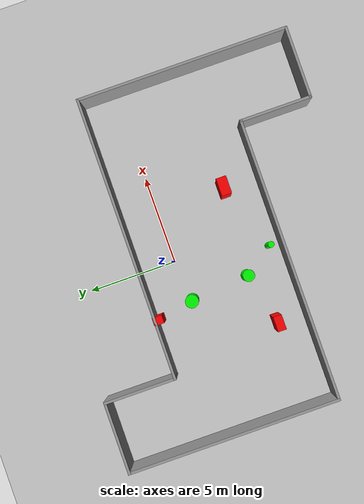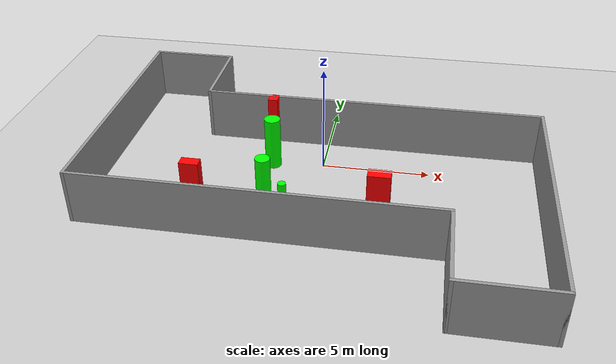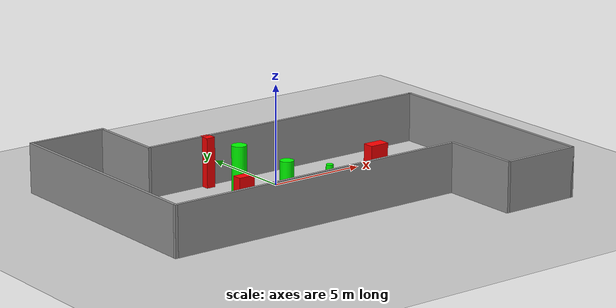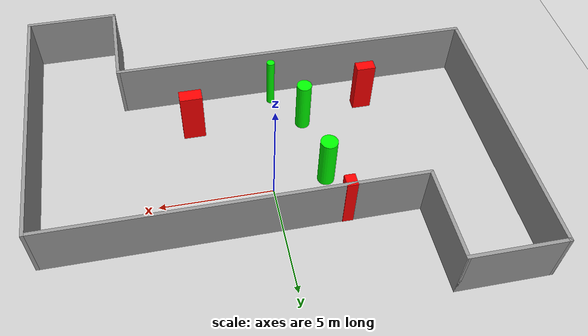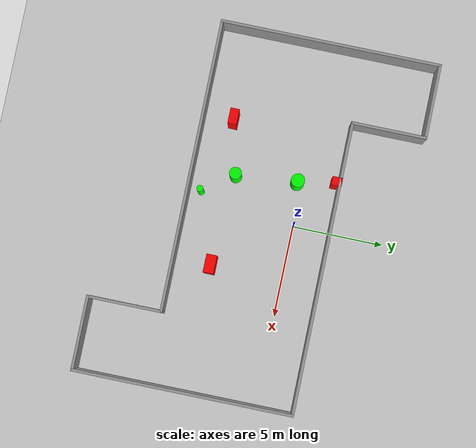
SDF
<sdf version="1.7">
 <world name="default">
  <light name="sun" type="directional">
   <pose>0 0 10 0 -0 0</pose>
   <diffuse>0.8 0.8 0.8 1</diffuse>
   <specular>0.2 0.2 0.2 1</specular>
   <attenuation>
    <range>1000</range>
    <constant>0.9</constant>
    <linear>0.01</linear>
    <quadratic>0.001</quadratic>
   </attenuation>
   <direction>-0.5 0.1 -0.9</direction>
   <spot><inner_angle>0</inner_angle><outer_angle>0</outer_angle><falloff>0</falloff></spot>
  </light>
  <model name="ground_plane">
   <static>1</static>
   <link name="link">
    <collision name="collision">
     <geometry><plane><normal>0 0 1</normal><size>100 100</size></plane></geometry>
     <surface>
      <contact><collide_bitmask>65535</collide_bitmask></contact>
      <friction><ode><mu>100</mu><mu2>50</mu2></ode></friction>
     </surface>
    </collision>
    <visual name="visual">
     <cast_shadows>0</cast_shadows>
     <geometry><plane><normal>0 0 1</normal><size>100 100</size></plane></geometry>
     <material>
      <script><uri>file://media/materials/scripts/gazebo.material</uri><name>Gazebo/Grey</name></script>
     </material>
    </visual>
   </link>
  </model>
  <gravity>0 0 -9.8</gravity>
  <magnetic_field>6e-06 2.3e-05 -4.2e-05</magnetic_field>
  <atmosphere type="adiabatic"/>
  <physics type="ode">
   <max_step_size>0.001</max_step_size>
   <real_time_factor>1</real_time_factor>
   <real_time_update_rate>1000</real_time_update_rate>
  </physics>
  <scene><ambient>0.4 0.4 0.4 1</ambient><background>0.7 0.7 0.7 1</background><shadows>1</shadows></scene>
  <spherical_coordinates>
   <surface_model>EARTH_WGS84</surface_model>
   <latitude_deg>0</latitude_deg>
   <longitude_deg>0</longitude_deg>
   <elevation>0</elevation>
   <heading_deg>0</heading_deg>
  </spherical_coordinates>
  <model name="my_base_walls">
   <link name="Wall_13">
    <collision name="Wall_13_Collision">
     <geometry><box><size>12.15 0.15 2.5</size></box></geometry>
     <pose>0 0 1.25 0 -0 0</pose>
    </collision>
    <visual name="Wall_13_Visual">
     <pose>0 0 1.25 0 -0 0</pose>
     <geometry><box><size>12.15 0.15 2.5</size></box></geometry>
     <material>
      <script><uri>file://media/materials/scripts/gazebo.material</uri><name>Gazebo/Grey</name></script>
      <ambient>1 1 1 1</ambient>
     </material>
     <meta><layer>0</layer></meta>
    </visual>
    <pose>10 -2 0 0 -0 1.5708</pose>
   </link>
   <link name="Wall_15">
    <collision name="Wall_15_Collision">
     <geometry><box><size>16.15 0.15 2.5</size></box></geometry>
     <pose>0 0 1.25 0 -0 0</pose>
    </collision>
    <visual name="Wall_15_Visual">
     <pose>0 0 1.25 0 -0 0</pose>
     <geometry><box><size>16.15 0.15 2.5</size></box></geometry>
     <material>
      <script><uri>file://media/materials/scripts/gazebo.material</uri><name>Gazebo/Grey</name></script>
      <ambient>1 1 1 1</ambient>
     </material>
     <meta><layer>0</layer></meta>
    </visual>
    <pose>2 4 0 0 -0 3.14159</pose>
   </link>
   <link name="Wall_17">
    <collision name="Wall_17_Collision">
     <geometry><box><size>4.15 0.15 2.5</size></box></geometry>
     <pose>0 0 1.25 0 -0 0</pose>
    </collision>
    <visual name="Wall_17_Visual">
     <pose>0 0 1.25 0 -0 0</pose>
     <geometry><box><size>4.15 0.15 2.5</size></box></geometry>
     <material>
      <script><uri>file://media/materials/scripts/gazebo.material</uri><name>Gazebo/Grey</name></script>
      <ambient>1 1 1 1</ambient>
     </material>
     <meta><layer>0</layer></meta>
    </visual>
    <pose>6 -6 0 0 -0 -1.5708</pose>
   </link>
   <link name="Wall_19">
    <collision name="Wall_19_Collision">
     <geometry><box><size>12.15 0.15 2.5</size></box></geometry>
     <pose>0 0 1.25 0 -0 0</pose>
    </collision>
    <visual name="Wall_19_Visual">
     <pose>0 0 1.25 0 -0 0</pose>
     <geometry><box><size>12.15 0.15 2.5</size></box></geometry>
     <material>
      <script><uri>file://media/materials/scripts/gazebo.material</uri><name>Gazebo/Grey</name></script>
      <ambient>1 1 1 1</ambient>
     </material>
     <meta><layer>0</layer></meta>
    </visual>
    <pose>-10 2 0 0 -0 1.5708</pose>
   </link>
   <link name="Wall_21">
    <collision name="Wall_21_Collision">
     <geometry><box><size>4.15 0.15 2.5</size></box></geometry>
     <pose>0 0 1.25 0 -0 0</pose>
    </collision>
    <visual name="Wall_21_Visual">
     <pose>0 0 1.25 0 -0 0</pose>
     <geometry><box><size>4.15 0.15 2.5</size></box></geometry>
     <material>
      <script><uri>file://media/materials/scripts/gazebo.material</uri><name>Gazebo/Grey</name></script>
      <ambient>1 1 1 1</ambient>
     </material>
     <meta><layer>0</layer></meta>
    </visual>
    <pose>-8 8 0 0 -0 0</pose>
   </link>
   <link name="Wall_23">
    <collision name="Wall_23_Collision">
     <geometry><box><size>4.15 0.15 2.5</size></box></geometry>
     <pose>0 0 1.25 0 -0 0</pose>
    </collision>
    <visual name="Wall_23_Visual">
     <pose>0 0 1.25 0 -0 0</pose>
     <geometry><box><size>4.15 0.15 2.5</size></box></geometry>
     <material>
      <script><uri>file://media/materials/scripts/gazebo.material</uri><name>Gazebo/Grey</name></script>
      <ambient>1 1 1 1</ambient>
     </material>
     <meta><layer>0</layer></meta>
    </visual>
    <pose>-6 6 0 0 -0 -1.5708</pose>
   </link>
   <link name="Wall_25">
    <collision name="Wall_25_Collision">
     <geometry><box><size>4.15 0.15 2.5</size></box></geometry>
     <pose>0 0 1.25 0 -0 0</pose>
    </collision>
    <visual name="Wall_25_Visual">
     <pose>0 0 1.25 0 -0 0</pose>
     <geometry><box><size>4.15 0.15 2.5</size></box></geometry>
     <material>
      <script><uri>file://media/materials/scripts/gazebo.material</uri><name>Gazebo/Grey</name></script>
      <ambient>1 1 1 1</ambient>
     </material>
     <meta><layer>0</layer></meta>
    </visual>
    <pose>8 -8 0 0 -0 0</pose>
   </link>
   <link name="Wall_9">
    <collision name="Wall_9_Collision">
     <geometry><box><size>16.15 0.15 2.5</size></box></geometry>
     <pose>0 0 1.25 0 -0 0</pose>
    </collision>
    <visual name="Wall_9_Visual">
     <pose>0 0 1.25 0 -0 0</pose>
     <geometry><box><size>16.15 0.15 2.5</size></box></geometry>
     <material>
      <script><uri>file://media/materials/scripts/gazebo.material</uri><name>Gazebo/Grey</name></script>
      <ambient>1 1 1 1</ambient>
     </material>
     <meta><layer>0</layer></meta>
    </visual>
    <pose>-2 -4 0 0 -0 3.14159</pose>
   </link>
   <static>1</static>
   <pose>-0 -2 0 0 -0 0</pose>
  </model>
  <model name="cylinder1">
   <static>1</static>
   <link name="link">
    <inertial>
     <mass>1</mass>
     <inertia><ixx>0.5</ixx><ixy>0</ixy><ixz>0</ixz><iyy>0.5</iyy><iyz>0</iyz><izz>1</izz></inertia>
    </inertial>
    <collision name="collision">
     <geometry><cylinder><radius>0.37306273802533463</radius><length>2.5</length></cylinder></geometry>
    </collision>
    <visual name="visual">
     <geometry><cylinder><radius>0.37306273802533463</radius><length>2.5</length></cylinder></geometry>
     <material>
      <ambient>0 1 0 1</ambient>
      <diffuse>0 1 0 1</diffuse>
      <specular>0.1 0.1 0.1 1</specular>
      <emissive>0 0 0 0</emissive>
     </material>
    </visual>
   </link>
   <pose>-2.3669630808649447 -0.25529139154797686 1.25 0 0 0</pose>
  </model>
  <model name="cylinder2">
   <static>1</static>
   <link name="link">
    <inertial>
     <mass>1</mass>
     <inertia><ixx>0.5</ixx><ixy>0</ixy><ixz>0</ixz><iyy>0.5</iyy><iyz>0</iyz><izz>1</izz></inertia>
    </inertial>
    <collision name="collision">
     <geometry><cylinder><radius>0.17590598661840315</radius><length>2.5</length></cylinder></geometry>
    </collision>
    <visual name="visual">
     <geometry><cylinder><radius>0.17590598661840315</radius><length>2.5</length></cylinder></geometry>
     <material>
      <ambient>0 1 0 1</ambient>
      <diffuse>0 1 0 1</diffuse>
      <specular>0.1 0.1 0.1 1</specular>
      <emissive>0 0 0 0</emissive>
     </material>
    </visual>
   </link>
   <pose>-0.8721502552732607 -5.318170352792869 1.25 0 0 0</pose>
  </model>
  <model name="cylinder3">
   <static>1</static>
   <link name="link">
    <inertial>
     <mass>1</mass>
     <inertia><ixx>0.5</ixx><ixy>0</ixy><ixz>0</ixz><iyy>0.5</iyy><iyz>0</iyz><izz>1</izz></inertia>
    </inertial>
    <collision name="collision">
     <geometry><cylinder><radius>0.33320872329829254</radius><length>2.5</length></cylinder></geometry>
    </collision>
    <visual name="visual">
     <geometry><cylinder><radius>0.33320872329829254</radius><length>2.5</length></cylinder></geometry>
     <material>
      <ambient>0 1 0 1</ambient>
      <diffuse>0 1 0 1</diffuse>
      <specular>0.1 0.1 0.1 1</specular>
      <emissive>0 0 0 0</emissive>
     </material>
    </visual>
   </link>
   <pose>-2.065827210297446 -3.6194488469886847 1.25 0 0 0</pose>
  </model>
  <model name="box1">
   <static>1</static>
   <link name="link">
    <inertial>
     <mass>1</mass>
     <inertia><ixx>0.083</ixx><ixy>0</ixy><ixz>0</ixz><iyy>0.083</iyy><iyz>0</iyz><izz>0.083</izz></inertia>
    </inertial>
    <collision name="collision">
     <geometry><box><size>0.8458143171787091 0.48186508668371386 2.5</size></box></geometry>
    </collision>
    <visual name="visual">
     <geometry><box><size>0.8458143171787091 0.48186508668371386 2.5</size></box></geometry>
     <material>
      <ambient>1 0 0 1</ambient>
      <diffuse>1 0 0 1</diffuse>
      <specular>0.1 0.1 0.1 1</specular>
      <emissive>0 0 0 0</emissive>
     </material>
    </visual>
    <sensor name="my_contact" type="contact">
     <contact><collision>box_collision</collision><topic>__default_topic__</topic></contact>
    </sensor>
   </link>
   <pose>-5.053030201512566 -4.345273296883114 1.25 0 0 0</pose>
  </model>
  <model name="box2">
   <static>1</static>
   <link name="link">
    <inertial>
     <mass>1</mass>
     <inertia><ixx>0.083</ixx><ixy>0</ixy><ixz>0</ixz><iyy>0.083</iyy><iyz>0</iyz><izz>0.083</izz></inertia>
    </inertial>
    <collision name="collision">
     <geometry><box><size>0.9974107505485621 0.5739957745443924 2.5</size></box></geometry>
    </collision>
    <visual name="visual">
     <geometry><box><size>0.9974107505485621 0.5739957745443924 2.5</size></box></geometry>
     <material>
      <ambient>1 0 0 1</ambient>
      <diffuse>1 0 0 1</diffuse>
      <specular>0.1 0.1 0.1 1</specular>
      <emissive>0 0 0 0</emissive>
     </material>
    </visual>
    <sensor name="my_contact" type="contact">
     <contact><collision>box_collision</collision><topic>__default_topic__</topic></contact>
    </sensor>
   </link>
   <pose>2.9736556551231192 -3.956693890342251 1.25 0 0 0</pose>
  </model>
  <model name="box3">
   <static>1</static>
   <link name="link">
    <inertial>
     <mass>1</mass>
     <inertia><ixx>0.083</ixx><ixy>0</ixy><ixz>0</ixz><iyy>0.083</iyy><iyz>0</iyz><izz>0.083</izz></inertia>
    </inertial>
    <collision name="collision">
     <geometry><box><size>0.46311391037235805 0.5578412390218771 2.5</size></box></geometry>
    </collision>
    <visual name="visual">
     <geometry><box><size>0.46311391037235805 0.5578412390218771 2.5</size></box></geometry>
     <material>
      <ambient>1 0 0 1</ambient>
      <diffuse>1 0 0 1</diffuse>
      <specular>0.1 0.1 0.1 1</specular>
      <emissive>0 0 0 0</emissive>
     </material>
    </visual>
    <sensor name="my_contact" type="contact">
     <contact><collision>box_collision</collision><topic>__default_topic__</topic></contact>
    </sensor>
   </link>
   <pose>-2.735475198373652 1.8184144008728333 1.25 0 0 0</pose>
  </model>
 </world>
</sdf>
